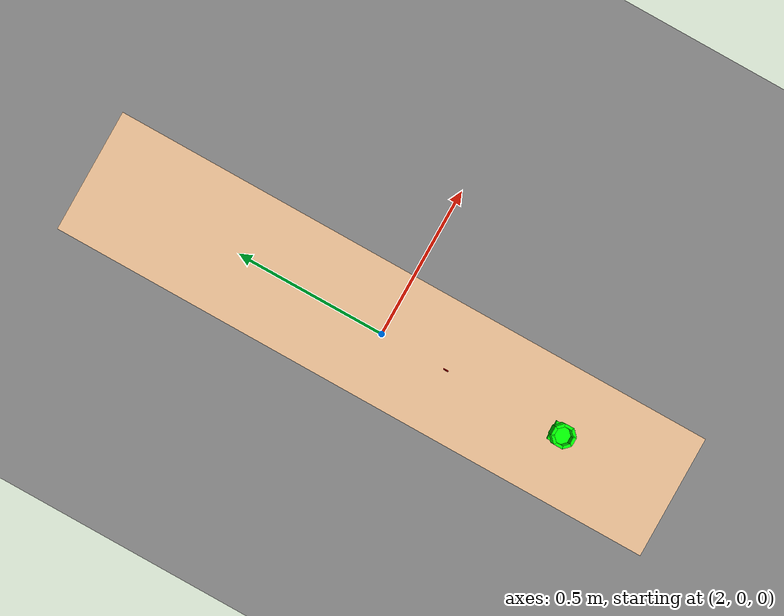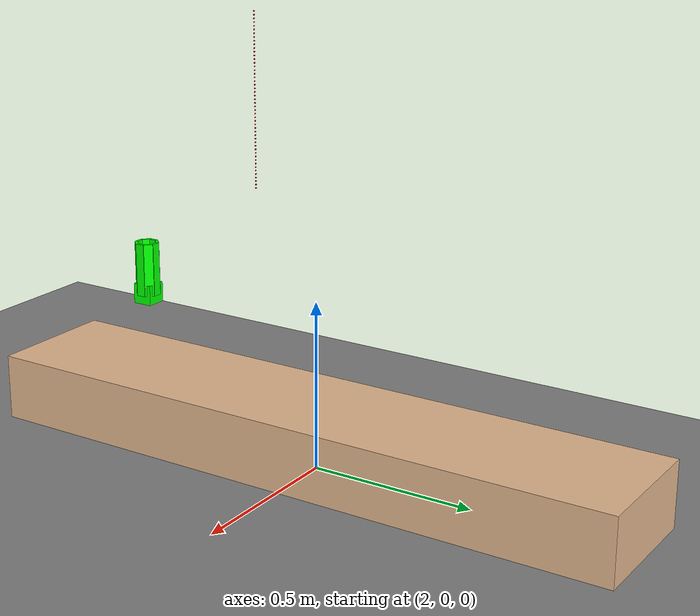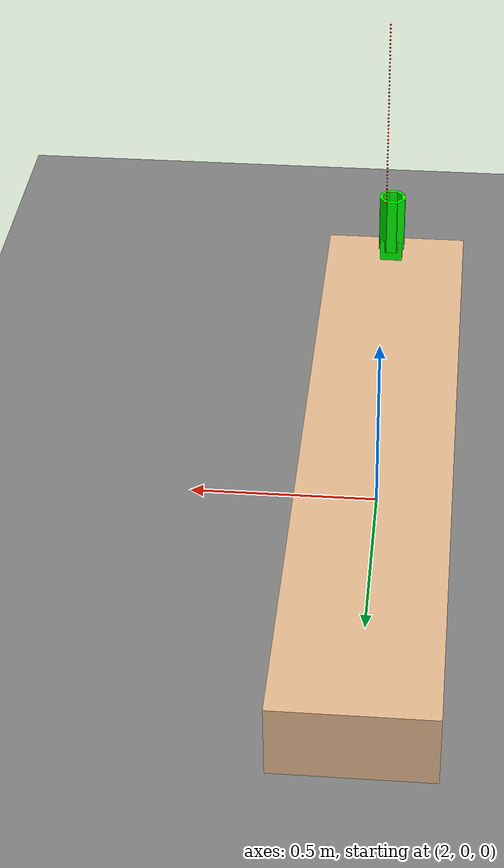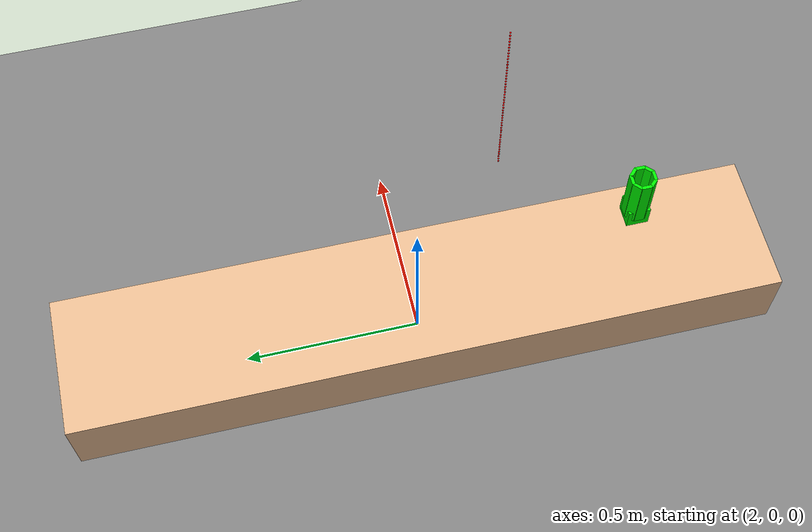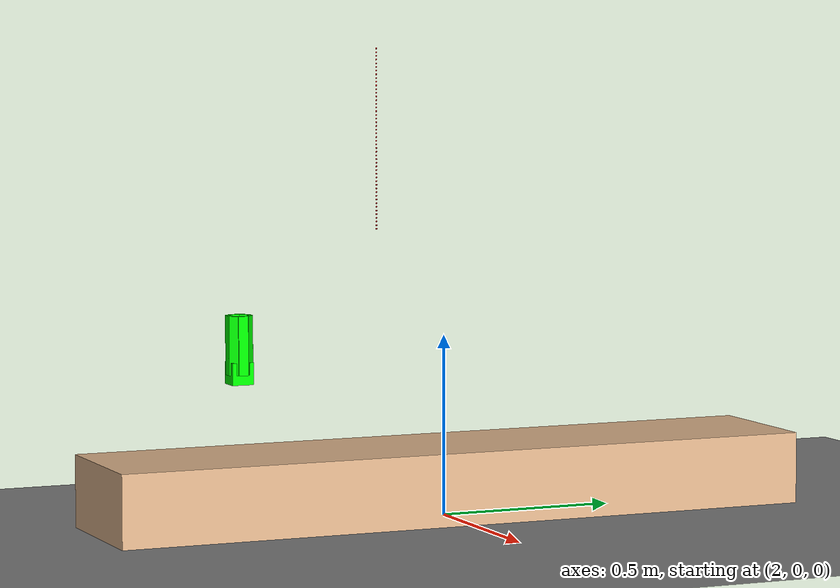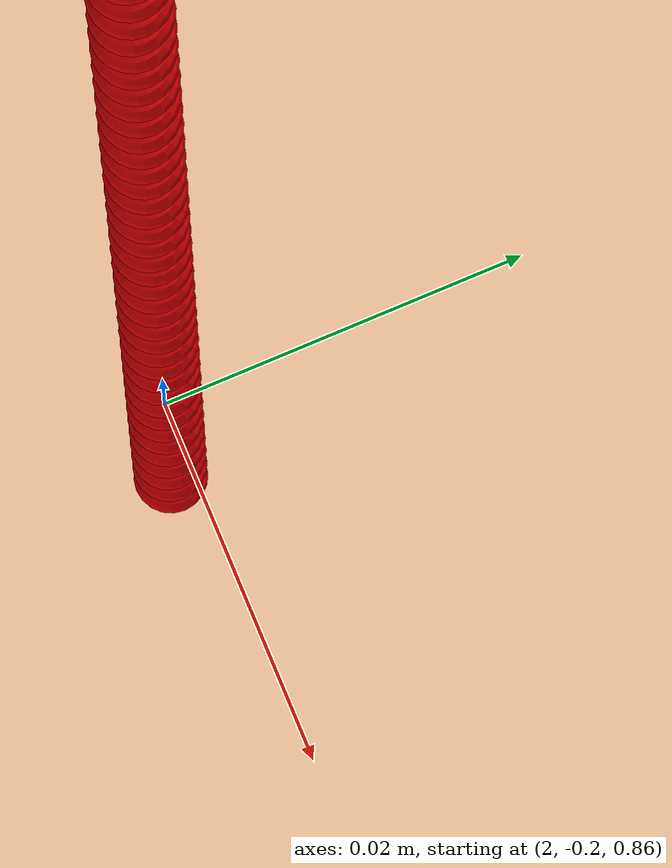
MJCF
<mujoco>
	<compiler angle="radian" autolimits="true" balanceinertia="true" />
	<option timestep="0.001" integrator="RK4" solver="CG" gravity="0 0 -9.81">
		<flag contact="enable"/>
	</option>

  	<default>
		<geom condim="4" solimp="0.99 0.99 0" solref="0.01 1" friction="1 0.002 0.0001"/>
	</default>

	<asset>
	<texture type="skybox" builtin="gradient" rgb1="1 1 1" rgb2=".6 .8 1" width="256" height="256"/>
		<texture name="grid" type="2d" builtin="checker" width="112" height="112" rgb1="0 0 0" rgb2="1 1 1" />
		<material name="grid" texture="grid" texrepeat="1 1" texuniform="true" reflectance=".2" />
	</asset>

	<worldbody>
		<geom name="floor" size="0 0 .05" type="plane" material="grid" condim="3" />
		<light diffuse="1 1 1" pos="0 0 5" dir="0 0 -1" />
		<light diffuse="1 1 1" pos="2 -1 5" dir="0 0 -1" />
		<light diffuse="1 1 1" pos="1 1 5" dir="0 0 -1" />
	</worldbody>

	<worldbody>
		<body name="table" pos="2 0 0.1">
			<geom name="table_geom" type="box" size="0.2 1 0.1" rgba=".89 0.72 .56 1"/>
		</body>

		<body name="free_cup2" pos="2 -0.6 0.5">
			<freejoint/>
			<inertial pos="0.0 0.0 0.0" mass="0.500" diaginertia="0.0008 0.0008 0.00015" />
			<geom type="box" pos="0 0 -0.076" size="0.03 0.03 0.03" rgba="0 1 0 1"/>
			<geom type="box" pos="0.03 0 0" euler="0 0 0" size="0.0044 0.013420519420888278 0.08" rgba="0 1 0 1" />
			<geom type="box" pos="0.021213 0.021213 0" euler="0 0 0.7853981633974483" size="0.0044 0.013420519420888278 0.08" rgba="0 1 0 1" />
			<geom type="box" pos="0 0.03 0" euler="0 0 1.5707963267948966" size="0.0044 0.013420519420888278 0.08" rgba="0 1 0 1" />
			<geom type="box" pos="-0.021213 0.021213 0" euler="0 0 2.356194490192345" size="0.0044 0.013420519420888278 0.08" rgba="0 1 0 1" />
			<geom type="box" pos="-0.03 0 0" euler="0 0 3.141592653589793" size="0.0044 0.013420519420888278 0.08" rgba="0 1 0 1" />
			<geom type="box" pos="-0.021213 -0.021213 0" euler="0 0 -2.356194490192345" size="0.0044 0.013420519420888278 0.08" rgba="0 1 0 1" />
			<geom type="box" pos="0 -0.03 0" euler="0 0 -1.5707963267948966" size="0.0044 0.013420519420888278 0.08" rgba="0 1 0 1" />
			<geom type="box" pos="0.021213 -0.021213 0" euler="0 0 -0.7853981633974483" size="0.0044 0.013420519420888278 0.08" rgba="0 1 0 1" />
		</body>
	</worldbody>

	<worldbody>
		<body name="sync_ball0" pos="2 -0.2 0.8">
			<freejoint/><inertial pos="0.0 0.0 0.0" mass="0.0001" diaginertia="0.000000001 0.000000001 0.000000001" />
			<geom type="sphere" size="0.002" rgba="1 0 0 1"/>
		</body>
		<body name="sync_ball1" pos="2 -0.2 0.81">
			<freejoint/> <inertial pos="0.0 0.0 0.0" mass="0.0001" diaginertia="0.000000001 0.000000001 0.000000001" />
			<geom type="sphere" size="0.002" rgba="1 0 0 1"/>
		</body>
		<body name="sync_ball2" pos="2 -0.2 0.8200000000000001">
			<freejoint/> <inertial pos="0.0 0.0 0.0" mass="0.0001" diaginertia="0.000000001 0.000000001 0.000000001" />
			<geom type="sphere" size="0.002" rgba="1 0 0 1"/>
		</body>
		<body name="sync_ball3" pos="2 -0.2 0.8300000000000001">
			<freejoint/> <inertial pos="0.0 0.0 0.0" mass="0.0001" diaginertia="0.000000001 0.000000001 0.000000001" />
			<geom type="sphere" size="0.002" rgba="1 0 0 1"/>
		</body>
		<body name="sync_ball4" pos="2 -0.2 0.8400000000000001">
			<freejoint/> <inertial pos="0.0 0.0 0.0" mass="0.0001" diaginertia="0.000000001 0.000000001 0.000000001" />
			<geom type="sphere" size="0.002" rgba="1 0 0 1"/>
		</body>
		<body name="sync_ball5" pos="2 -0.2 0.8500000000000001">
			<freejoint/> <inertial pos="0.0 0.0 0.0" mass="0.0001" diaginertia="0.000000001 0.000000001 0.000000001" />
			<geom type="sphere" size="0.002" rgba="1 0 0 1"/>
		</body>
		<body name="sync_ball6" pos="2 -0.2 0.8600000000000001">
			<freejoint/> <inertial pos="0.0 0.0 0.0" mass="0.0001" diaginertia="0.000000001 0.000000001 0.000000001" />
			<geom type="sphere" size="0.002" rgba="1 0 0 1"/>
		</body>
		<body name="sync_ball7" pos="2 -0.2 0.8700000000000001">
			<freejoint/> <inertial pos="0.0 0.0 0.0" mass="0.0001" diaginertia="0.000000001 0.000000001 0.000000001" />
			<geom type="sphere" size="0.002" rgba="1 0 0 1"/>
		</body>
		<body name="sync_ball8" pos="2 -0.2 0.88">
			<freejoint/> <inertial pos="0.0 0.0 0.0" mass="0.0001" diaginertia="0.000000001 0.000000001 0.000000001" />
			<geom type="sphere" size="0.002" rgba="1 0 0 1"/>
		</body>
		<body name="sync_ball9" pos="2 -0.2 0.89">
			<freejoint/> <inertial pos="0.0 0.0 0.0" mass="0.0001" diaginertia="0.000000001 0.000000001 0.000000001" />
			<geom type="sphere" size="0.002" rgba="1 0 0 1"/>
		</body>
		<body name="sync_ball10" pos="2 -0.2 0.9">
			<freejoint/> <inertial pos="0.0 0.0 0.0" mass="0.0001" diaginertia="0.000000001 0.000000001 0.000000001" />
			<geom type="sphere" size="0.002" rgba="1 0 0 1"/>
		</body>
		<body name="sync_ball11" pos="2 -0.2 0.91">
			<freejoint/> <inertial pos="0.0 0.0 0.0" mass="0.0001" diaginertia="0.000000001 0.000000001 0.000000001" />
			<geom type="sphere" size="0.002" rgba="1 0 0 1"/>
		</body>
		<body name="sync_ball12" pos="2 -0.2 0.92">
			<freejoint/> <inertial pos="0.0 0.0 0.0" mass="0.0001" diaginertia="0.000000001 0.000000001 0.000000001" />
			<geom type="sphere" size="0.002" rgba="1 0 0 1"/>
		</body>
		<body name="sync_ball13" pos="2 -0.2 0.93">
			<freejoint/> <inertial pos="0.0 0.0 0.0" mass="0.0001" diaginertia="0.000000001 0.000000001 0.000000001" />
			<geom type="sphere" size="0.002" rgba="1 0 0 1"/>
		</body>
		<body name="sync_ball14" pos="2 -0.2 0.9400000000000001">
			<freejoint/> <inertial pos="0.0 0.0 0.0" mass="0.0001" diaginertia="0.000000001 0.000000001 0.000000001" />
			<geom type="sphere" size="0.002" rgba="1 0 0 1"/>
		</body>
		<body name="sync_ball15" pos="2 -0.2 0.9500000000000001">
			<freejoint/> <inertial pos="0.0 0.0 0.0" mass="0.0001" diaginertia="0.000000001 0.000000001 0.000000001" />
			<geom type="sphere" size="0.002" rgba="1 0 0 1"/>
		</body>
		<body name="sync_ball16" pos="2 -0.2 0.9600000000000001">
			<freejoint/> <inertial pos="0.0 0.0 0.0" mass="0.0001" diaginertia="0.000000001 0.000000001 0.000000001" />
			<geom type="sphere" size="0.002" rgba="1 0 0 1"/>
		</body>
		<body name="sync_ball17" pos="2 -0.2 0.9700000000000001">
			<freejoint/> <inertial pos="0.0 0.0 0.0" mass="0.0001" diaginertia="0.000000001 0.000000001 0.000000001" />
			<geom type="sphere" size="0.002" rgba="1 0 0 1"/>
		</body>
		<body name="sync_ball18" pos="2 -0.2 0.98">
			<freejoint/> <inertial pos="0.0 0.0 0.0" mass="0.0001" diaginertia="0.000000001 0.000000001 0.000000001" />
			<geom type="sphere" size="0.002" rgba="1 0 0 1"/>
		</body>
		<body name="sync_ball19" pos="2 -0.2 0.99">
			<freejoint/> <inertial pos="0.0 0.0 0.0" mass="0.0001" diaginertia="0.000000001 0.000000001 0.000000001" />
			<geom type="sphere" size="0.002" rgba="1 0 0 1"/>
		</body>
		<body name="sync_ball20" pos="2 -0.2 1.0">
			<freejoint/> <inertial pos="0.0 0.0 0.0" mass="0.0001" diaginertia="0.000000001 0.000000001 0.000000001" />
			<geom type="sphere" size="0.002" rgba="1 0 0 1"/>
		</body>
		<body name="sync_ball21" pos="2 -0.2 1.01">
			<freejoint/> <inertial pos="0.0 0.0 0.0" mass="0.0001" diaginertia="0.000000001 0.000000001 0.000000001" />
			<geom type="sphere" size="0.002" rgba="1 0 0 1"/>
		</body>
		<body name="sync_ball22" pos="2 -0.2 1.02">
			<freejoint/> <inertial pos="0.0 0.0 0.0" mass="0.0001" diaginertia="0.000000001 0.000000001 0.000000001" />
			<geom type="sphere" size="0.002" rgba="1 0 0 1"/>
		</body>
		<body name="sync_ball23" pos="2 -0.2 1.03">
			<freejoint/> <inertial pos="0.0 0.0 0.0" mass="0.0001" diaginertia="0.000000001 0.000000001 0.000000001" />
			<geom type="sphere" size="0.002" rgba="1 0 0 1"/>
		</body>
		<body name="sync_ball24" pos="2 -0.2 1.04">
			<freejoint/> <inertial pos="0.0 0.0 0.0" mass="0.0001" diaginertia="0.000000001 0.000000001 0.000000001" />
			<geom type="sphere" size="0.002" rgba="1 0 0 1"/>
		</body>
		<body name="sync_ball25" pos="2 -0.2 1.05">
			<freejoint/> <inertial pos="0.0 0.0 0.0" mass="0.0001" diaginertia="0.000000001 0.000000001 0.000000001" />
			<geom type="sphere" size="0.002" rgba="1 0 0 1"/>
		</body>
		<body name="sync_ball26" pos="2 -0.2 1.06">
			<freejoint/> <inertial pos="0.0 0.0 0.0" mass="0.0001" diaginertia="0.000000001 0.000000001 0.000000001" />
			<geom type="sphere" size="0.002" rgba="1 0 0 1"/>
		</body>
		<body name="sync_ball27" pos="2 -0.2 1.07">
			<freejoint/> <inertial pos="0.0 0.0 0.0" mass="0.0001" diaginertia="0.000000001 0.000000001 0.000000001" />
			<geom type="sphere" size="0.002" rgba="1 0 0 1"/>
		</body>
		<body name="sync_ball28" pos="2 -0.2 1.08">
			<freejoint/> <inertial pos="0.0 0.0 0.0" mass="0.0001" diaginertia="0.000000001 0.000000001 0.000000001" />
			<geom type="sphere" size="0.002" rgba="1 0 0 1"/>
		</body>
		<body name="sync_ball29" pos="2 -0.2 1.09">
			<freejoint/> <inertial pos="0.0 0.0 0.0" mass="0.0001" diaginertia="0.000000001 0.000000001 0.000000001" />
			<geom type="sphere" size="0.002" rgba="1 0 0 1"/>
		</body>
		<body name="sync_ball30" pos="2 -0.2 1.1">
			<freejoint/> <inertial pos="0.0 0.0 0.0" mass="0.0001" diaginertia="0.000000001 0.000000001 0.000000001" />
			<geom type="sphere" size="0.002" rgba="1 0 0 1"/>
		</body>
		<body name="sync_ball31" pos="2 -0.2 1.11">
			<freejoint/> <inertial pos="0.0 0.0 0.0" mass="0.0001" diaginertia="0.000000001 0.000000001 0.000000001" />
			<geom type="sphere" size="0.002" rgba="1 0 0 1"/>
		</body>
		<body name="sync_ball32" pos="2 -0.2 1.12">
			<freejoint/> <inertial pos="0.0 0.0 0.0" mass="0.0001" diaginertia="0.000000001 0.000000001 0.000000001" />
			<geom type="sphere" size="0.002" rgba="1 0 0 1"/>
		</body>
		<body name="sync_ball33" pos="2 -0.2 1.1300000000000001">
			<freejoint/> <inertial pos="0.0 0.0 0.0" mass="0.0001" diaginertia="0.000000001 0.000000001 0.000000001" />
			<geom type="sphere" size="0.002" rgba="1 0 0 1"/>
		</body>
		<body name="sync_ball34" pos="2 -0.2 1.1400000000000001">
			<freejoint/> <inertial pos="0.0 0.0 0.0" mass="0.0001" diaginertia="0.000000001 0.000000001 0.000000001" />
			<geom type="sphere" size="0.002" rgba="1 0 0 1"/>
		</body>
		<body name="sync_ball35" pos="2 -0.2 1.1500000000000001">
			<freejoint/> <inertial pos="0.0 0.0 0.0" mass="0.0001" diaginertia="0.000000001 0.000000001 0.000000001" />
			<geom type="sphere" size="0.002" rgba="1 0 0 1"/>
		</body>
		<body name="sync_ball36" pos="2 -0.2 1.1600000000000001">
			<freejoint/> <inertial pos="0.0 0.0 0.0" mass="0.0001" diaginertia="0.000000001 0.000000001 0.000000001" />
			<geom type="sphere" size="0.002" rgba="1 0 0 1"/>
		</body>
		<body name="sync_ball37" pos="2 -0.2 1.17">
			<freejoint/> <inertial pos="0.0 0.0 0.0" mass="0.0001" diaginertia="0.000000001 0.000000001 0.000000001" />
			<geom type="sphere" size="0.002" rgba="1 0 0 1"/>
		</body>
		<body name="sync_ball38" pos="2 -0.2 1.1800000000000002">
			<freejoint/> <inertial pos="0.0 0.0 0.0" mass="0.0001" diaginertia="0.000000001 0.000000001 0.000000001" />
			<geom type="sphere" size="0.002" rgba="1 0 0 1"/>
		</body>
		<body name="sync_ball39" pos="2 -0.2 1.19">
			<freejoint/> <inertial pos="0.0 0.0 0.0" mass="0.0001" diaginertia="0.000000001 0.000000001 0.000000001" />
			<geom type="sphere" size="0.002" rgba="1 0 0 1"/>
		</body>
		<body name="sync_ball40" pos="2 -0.2 1.2000000000000002">
			<freejoint/> <inertial pos="0.0 0.0 0.0" mass="0.0001" diaginertia="0.000000001 0.000000001 0.000000001" />
			<geom type="sphere" size="0.002" rgba="1 0 0 1"/>
		</body>
		<body name="sync_ball41" pos="2 -0.2 1.21">
			<freejoint/> <inertial pos="0.0 0.0 0.0" mass="0.0001" diaginertia="0.000000001 0.000000001 0.000000001" />
			<geom type="sphere" size="0.002" rgba="1 0 0 1"/>
		</body>
		<body name="sync_ball42" pos="2 -0.2 1.22">
			<freejoint/> <inertial pos="0.0 0.0 0.0" mass="0.0001" diaginertia="0.000000001 0.000000001 0.000000001" />
			<geom type="sphere" size="0.002" rgba="1 0 0 1"/>
		</body>
		<body name="sync_ball43" pos="2 -0.2 1.23">
			<freejoint/> <inertial pos="0.0 0.0 0.0" mass="0.0001" diaginertia="0.000000001 0.000000001 0.000000001" />
			<geom type="sphere" size="0.002" rgba="1 0 0 1"/>
		</body>
		<body name="sync_ball44" pos="2 -0.2 1.24">
			<freejoint/> <inertial pos="0.0 0.0 0.0" mass="0.0001" diaginertia="0.000000001 0.000000001 0.000000001" />
			<geom type="sphere" size="0.002" rgba="1 0 0 1"/>
		</body>
		<body name="sync_ball45" pos="2 -0.2 1.25">
			<freejoint/> <inertial pos="0.0 0.0 0.0" mass="0.0001" diaginertia="0.000000001 0.000000001 0.000000001" />
			<geom type="sphere" size="0.002" rgba="1 0 0 1"/>
		</body>
		<body name="sync_ball46" pos="2 -0.2 1.26">
			<freejoint/> <inertial pos="0.0 0.0 0.0" mass="0.0001" diaginertia="0.000000001 0.000000001 0.000000001" />
			<geom type="sphere" size="0.002" rgba="1 0 0 1"/>
		</body>
		<body name="sync_ball47" pos="2 -0.2 1.27">
			<freejoint/> <inertial pos="0.0 0.0 0.0" mass="0.0001" diaginertia="0.000000001 0.000000001 0.000000001" />
			<geom type="sphere" size="0.002" rgba="1 0 0 1"/>
		</body>
		<body name="sync_ball48" pos="2 -0.2 1.28">
			<freejoint/> <inertial pos="0.0 0.0 0.0" mass="0.0001" diaginertia="0.000000001 0.000000001 0.000000001" />
			<geom type="sphere" size="0.002" rgba="1 0 0 1"/>
		</body>
		<body name="sync_ball49" pos="2 -0.2 1.29">
			<freejoint/> <inertial pos="0.0 0.0 0.0" mass="0.0001" diaginertia="0.000000001 0.000000001 0.000000001" />
			<geom type="sphere" size="0.002" rgba="1 0 0 1"/>
		</body>

	</worldbody>
</mujoco>
